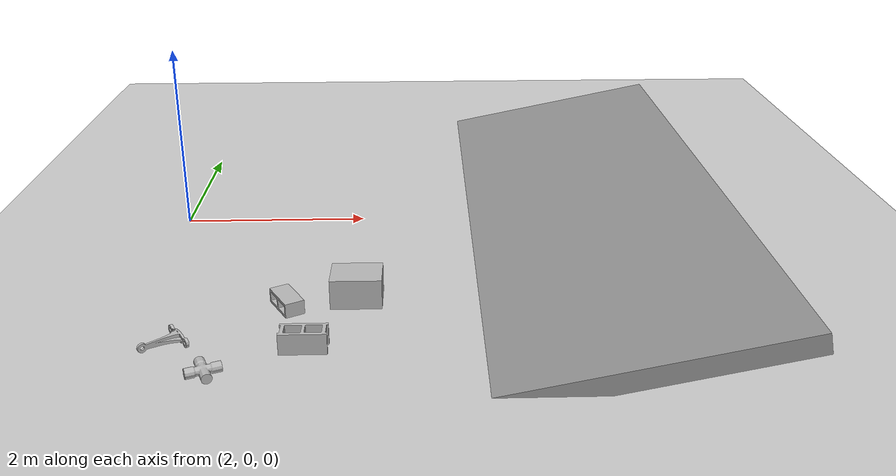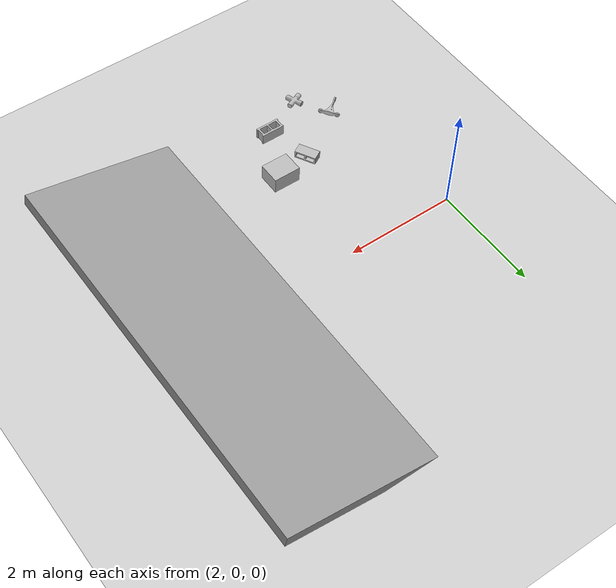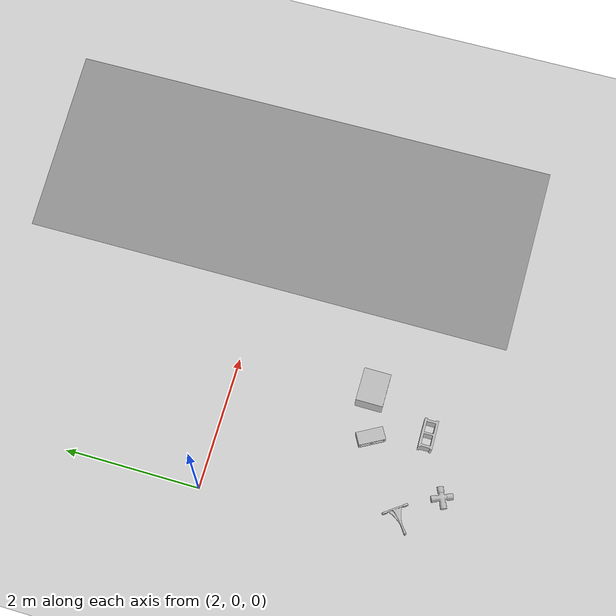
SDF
<sdf version="1.4">
 <world name="default">
  <light name="sun" type="directional">
   <pose>0 0 10 0 -0 0</pose>
   <diffuse>0.8 0.8 0.8 1</diffuse>
   <specular>0.2 0.2 0.2 1</specular>
   <attenuation>
    <range>1000</range>
    <constant>0.9</constant>
    <linear>0.01</linear>
    <quadratic>0.001</quadratic>
   </attenuation>
   <direction>-0.5 0.1 -0.9</direction>
  </light>
  <model name="ground_plane">
   <static>1</static>
   <link name="link">
    <collision name="collision">
     <geometry><plane><normal>0 0 1</normal><size>100 100</size></plane></geometry>
     <surface><friction><ode><mu>100</mu><mu2>50</mu2></ode></friction></surface>
    </collision>
    <visual name="visual">
     <cast_shadows>0</cast_shadows>
     <geometry><plane><normal>0 0 1</normal><size>100 100</size></plane></geometry>
     <material>
      <script><uri>file://media/materials/scripts/gazebo.material</uri><name>Gazebo/Grey</name></script>
     </material>
    </visual>
    <velocity_decay><linear>0</linear><angular>0</angular></velocity_decay>
   </link>
  </model>
  <physics type="ode">
   <max_step_size>0.001</max_step_size>
   <real_time_factor>1</real_time_factor>
   <real_time_update_rate>1000</real_time_update_rate>
   <gravity>0 0 -9.8</gravity>
  </physics>
  <scene><ambient>0.4 0.4 0.4 1</ambient><background>0.7 0.7 0.7 1</background><shadows>1</shadows></scene>
  <spherical_coordinates>
   <surface_model>EARTH_WGS84</surface_model>
   <latitude_deg>0</latitude_deg>
   <longitude_deg>0</longitude_deg>
   <elevation>0</elevation>
   <heading_deg>0</heading_deg>
  </spherical_coordinates>
  <model name="cinder_block_2">
   <link name="link">
    <inertial>
     <pose>0 0 0.0714375 0 -0 0</pose>
     <mass>5</mass>
     <inertia>
      <ixx>0.06908</ixx>
      <ixy>0</ixy>
      <iyy>0.028705</iyy>
      <ixz>0</ixz>
      <iyz>0</iyz>
      <izz>0.073708</izz>
     </inertia>
    </inertial>
    <visual name="visual">
     <geometry><mesh><uri>model://cinder_block_2/meshes/cinder_block.dae</uri></mesh></geometry>
    </visual>
    <collision name="top">
     <pose>0 0 0.130175 0 -0 0</pose>
     <geometry><box><size>0.19368 0.396875 0.0254</size></box></geometry>
     <surface>
      <contact><ode><max_vel>0.1</max_vel><min_depth>0.001</min_depth></ode></contact>
      <friction><ode><mu>1</mu><mu2>1</mu2></ode></friction>
     </surface>
    </collision>
    <collision name="bottom">
     <pose>0 0 0.0127 0 -0 0</pose>
     <geometry><box><size>0.19368 0.396875 0.0254</size></box></geometry>
     <surface>
      <contact><ode><max_vel>0.1</max_vel><min_depth>0.001</min_depth></ode></contact>
      <friction><ode><mu>1</mu><mu2>1</mu2></ode></friction>
     </surface>
    </collision>
    <collision name="left">
     <pose>0 -0.185737 0.0714375 0 -0 0</pose>
     <geometry><box><size>0.19368 0.0254 0.092075</size></box></geometry>
     <surface>
      <contact><ode><max_vel>0.1</max_vel><min_depth>0.001</min_depth></ode></contact>
      <friction><ode><mu>1</mu><mu2>1</mu2></ode></friction>
     </surface>
    </collision>
    <collision name="right">
     <pose>0 0.185737 0.0714375 0 -0 0</pose>
     <geometry><box><size>0.19368 0.0254 0.092075</size></box></geometry>
     <surface>
      <contact><ode><max_vel>0.1</max_vel><min_depth>0.001</min_depth></ode></contact>
      <friction><ode><mu>1</mu><mu2>1</mu2></ode></friction>
     </surface>
    </collision>
    <collision name="middle">
     <pose>0 0 0.0714375 0 -0 0</pose>
     <geometry><box><size>0.19368 0.0254 0.092075</size></box></geometry>
     <surface>
      <contact><ode><max_vel>0.1</max_vel><min_depth>0.001</min_depth></ode></contact>
      <friction><ode><mu>1</mu><mu2>1</mu2></ode></friction>
     </surface>
    </collision>
    <velocity_decay><linear>0</linear><angular>0</angular></velocity_decay>
   </link>
   <pose>3.37856 -2.14649 -0.000409 0.0003 -0.001722 0.506263</pose>
   <static>0</static>
  </model>
  <model name="t_brace_part">
   <link name="link">
    <inertial>
     <pose>0.22079 0 0.04663 0 -0 0</pose>
     <mass>0.5</mass>
     <inertia>
      <ixx>0.00698181</ixx>
      <ixy>0</ixy>
      <ixz>0</ixz>
      <iyy>0.00703473</iyy>
      <iyz>0</iyz>
      <izz>0.0132918</izz>
     </inertia>
    </inertial>
    <collision name="collision1">
     <pose>0.02115 0 0.04663 0 -0 0</pose>
     <geometry><box><size>0.02038 0.39858 0.09326</size></box></geometry>
    </collision>
    <collision name="collision2">
     <pose>0.22079 0 0.05013 0 -0 0</pose>
     <geometry><box><size>0.40017 0.02038 0.0866</size></box></geometry>
    </collision>
    <collision name="collision3">
     <pose>0.09895 0 0.05013 0 -0 0</pose>
     <geometry><box><size>0.13997 0.11302 0.0866</size></box></geometry>
    </collision>
    <visual name="visual">
     <geometry><mesh><uri>model://t_brace_part/meshes/t_brace.dae</uri></mesh></geometry>
     <material>
      <script>
       <uri>model://arm_part/materials/scripts</uri>
       <uri>model://arm_part/materials/textures</uri>
       <name>ArmPart/Diffuse</name>
      </script>
     </material>
    </visual>
    <velocity_decay><linear>0</linear><angular>0</angular></velocity_decay>
   </link>
   <pose>2.49353 -2.72513 0.093416 -3.14159 -3.3e-05 -2.51202</pose>
   <static>0</static>
  </model>
  <model name="cardboard_box">
   <pose>4.04195 -2.00466 0.149 -0 -0 -0.003085</pose>
   <link name="link">
    <inertial>
     <mass>2</mass>
     <inertia>
      <ixx>0.0416667</ixx>
      <ixy>0</ixy>
      <ixz>0</ixz>
      <iyy>0.0566667</iyy>
      <iyz>0</iyz>
      <izz>0.0683333</izz>
     </inertia>
    </inertial>
    <collision name="collision">
     <geometry><box><size>0.5 0.4 0.3</size></box></geometry>
     <surface>
      <friction><ode><mu>1</mu><mu2>1</mu2></ode></friction>
      <contact><ode><kp>1e+07</kp><kd>1</kd><min_depth>0.001</min_depth><max_vel>0.1</max_vel></ode></contact>
     </surface>
    </collision>
    <visual name="visual">
     <pose>0 0 -0.15 0 -0 0</pose>
     <geometry>
      <mesh><uri>model://cardboard_box/meshes/cardboard_box.dae</uri><scale>1.25932 1.00746 0.755591</scale></mesh>
     </geometry>
    </visual>
    <velocity_decay><linear>0</linear><angular>0</angular></velocity_decay>
   </link>
   <static>0</static>
  </model>
  <model name="cinder_block">
   <link name="link">
    <inertial>
     <pose>0 0 0.1016 0 -0 0</pose>
     <mass>5</mass>
     <inertia>
      <ixx>0.028705</ixx>
      <ixy>0</ixy>
      <iyy>0.073708</iyy>
      <ixz>0</ixz>
      <iyz>0</iyz>
      <izz>0.06908</izz>
     </inertia>
    </inertial>
    <visual name="visual">
     <geometry><mesh><uri>model://cinder_block/meshes/cinder_block.dae</uri></mesh></geometry>
    </visual>
    <collision name="left">
     <pose>0 -0.08465 0.1016 0 -0 0</pose>
     <geometry><box><size>0.43495 0.0339 0.2032</size></box></geometry>
     <surface>
      <contact><ode><max_vel>0.1</max_vel><min_depth>0.001</min_depth></ode></contact>
      <friction><ode><mu>1</mu><mu2>1</mu2></ode></friction>
     </surface>
    </collision>
    <collision name="right">
     <pose>0 0.08465 0.1016 0 -0 0</pose>
     <geometry><box><size>0.43495 0.0339 0.2032</size></box></geometry>
     <surface>
      <contact><ode><max_vel>0.1</max_vel><min_depth>0.001</min_depth></ode></contact>
      <friction><ode><mu>1</mu><mu2>1</mu2></ode></friction>
     </surface>
    </collision>
    <collision name="front">
     <pose>0.18625 0 0.1016 0 -0 0</pose>
     <geometry><box><size>0.0339 0.1354 0.203</size></box></geometry>
     <surface>
      <contact><ode><max_vel>0.1</max_vel><min_depth>0.001</min_depth></ode></contact>
      <friction><ode><mu>1</mu><mu2>1</mu2></ode></friction>
     </surface>
    </collision>
    <collision name="middle">
     <pose>0 0 0.1016 0 -0 0</pose>
     <geometry><box><size>0.0339 0.1354 0.203</size></box></geometry>
     <surface>
      <contact><ode><max_vel>0.1</max_vel><min_depth>0.001</min_depth></ode></contact>
      <friction><ode><mu>1</mu><mu2>1</mu2></ode></friction>
     </surface>
    </collision>
    <collision name="back">
     <pose>-0.18625 0 0.1016 0 -0 0</pose>
     <geometry><box><size>0.0339 0.1354 0.203</size></box></geometry>
     <surface>
      <contact><ode><max_vel>0.1</max_vel><min_depth>0.001</min_depth></ode></contact>
      <friction><ode><mu>1</mu><mu2>1</mu2></ode></friction>
     </surface>
    </collision>
    <velocity_decay><linear>0</linear><angular>0</angular></velocity_decay>
   </link>
   <pose>3.61892 -2.93134 -1.1e-05 1.1e-05 5e-06 0.000655</pose>
   <static>0</static>
  </model>
  <model name="cross_joint_part">
   <link name="link">
    <inertial>
     <pose>0 0 0.048275 0 -0 0</pose>
     <mass>0.5</mass>
     <inertia>
      <ixx>0.00455435</ixx>
      <ixy>0</ixy>
      <ixz>0</ixz>
      <iyy>0.00455435</iyy>
      <iyz>0</iyz>
      <izz>0.00833187</izz>
     </inertia>
    </inertial>
    <collision name="collisionY">
     <pose>0 0 0.048275 1.5707 -0 0</pose>
     <geometry><cylinder><length>0.3162</length><radius>0.0483</radius></cylinder></geometry>
    </collision>
    <collision name="collisionX">
     <pose>0 0 0.048275 0 1.5707 0</pose>
     <geometry><cylinder><length>0.3162</length><radius>0.0483</radius></cylinder></geometry>
    </collision>
    <visual name="visual">
     <geometry><mesh><uri>model://cross_joint_part/meshes/cross_joint.dae</uri></mesh></geometry>
     <material>
      <script>
       <uri>model://arm_part/materials/scripts</uri>
       <uri>model://arm_part/materials/textures</uri>
       <name>ArmPart/Diffuse</name>
      </script>
     </material>
    </visual>
    <velocity_decay><linear>0</linear><angular>0</angular></velocity_decay>
   </link>
   <pose>2.80975 -3.33495 2e-05 0.000126 0.000126 1.96817</pose>
   <static>0</static>
  </model>
  <model name="grey_wall_0">
   <static>1</static>
   <link name="link">
    <pose>0 0 1.4 0 -0 0</pose>
    <collision name="collision"><geometry><box><size>7.5 0.2 2.8</size></box></geometry></collision>
    <visual name="visual">
     <cast_shadows>0</cast_shadows>
     <geometry><box><size>7.5 0.2 2.8</size></box></geometry>
     <material>
      <script>
       <uri>model://grey_wall/materials/scripts</uri>
       <uri>model://grey_wall/materials/textures</uri>
       <name>vrc/grey_wall</name>
      </script>
     </material>
    </visual>
    <velocity_decay><linear>0</linear><angular>0</angular></velocity_decay>
   </link>
   <pose>5.24849 -0.00179 -0.10846 -1.37071 -0 -1.57056</pose>
  </model>
 </world>
</sdf>
